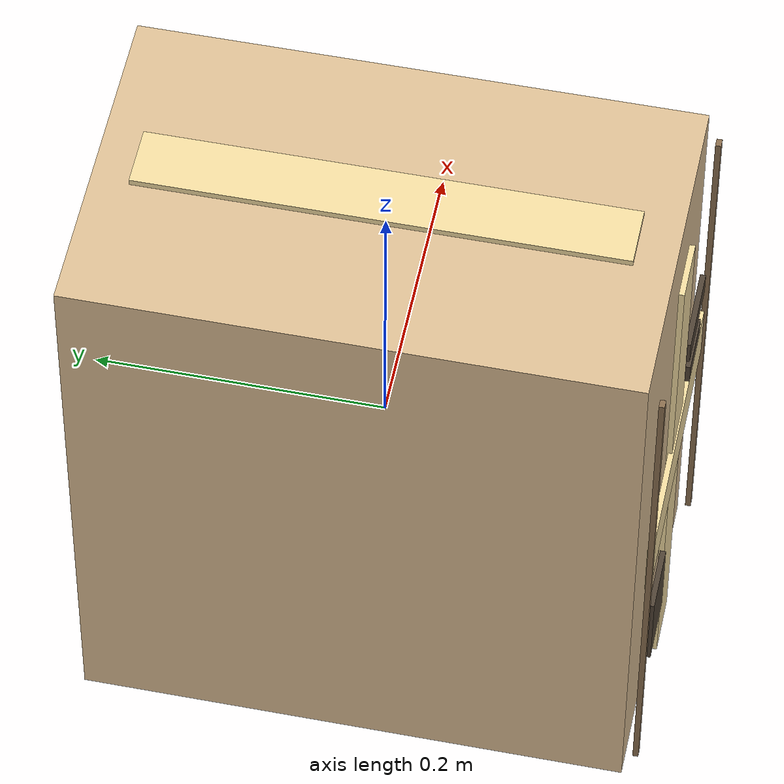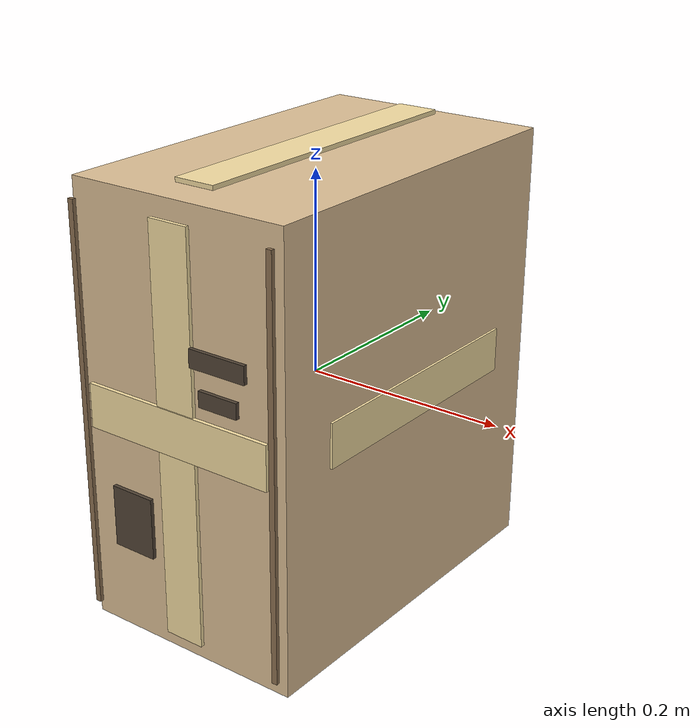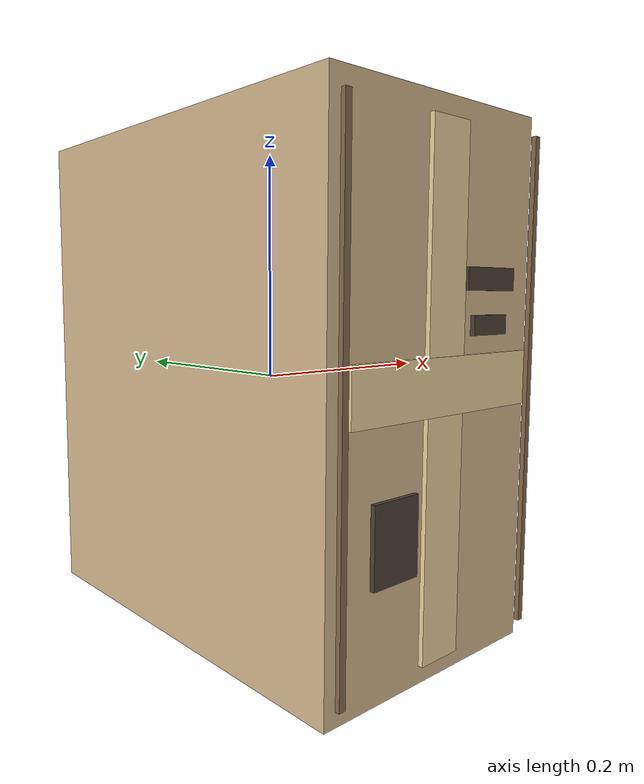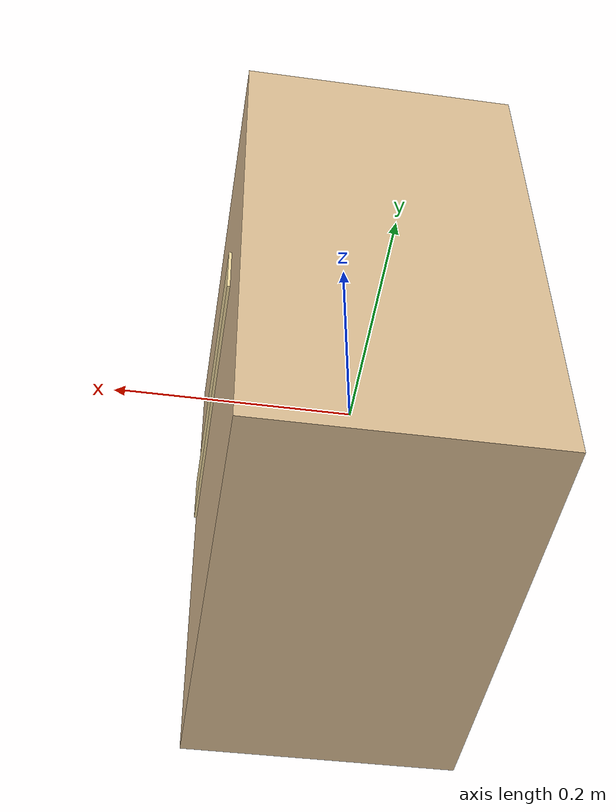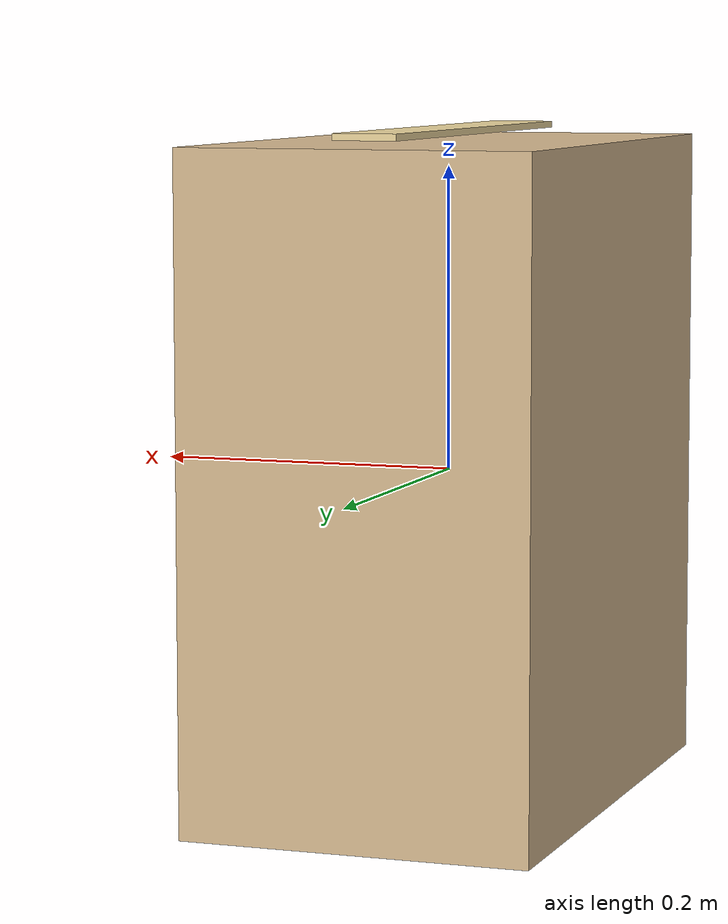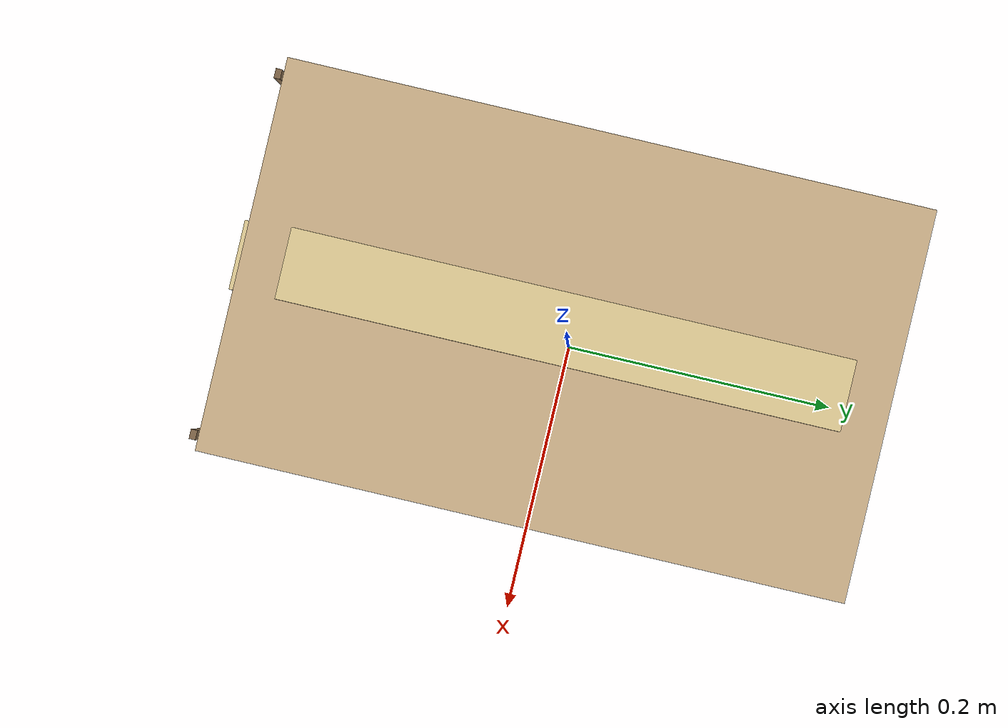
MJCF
<mujoco model="carry box">
  <worldbody>
    <body name="box">
      <freejoint name="free_joint" />
      <geom name="collision" type="box" size="0.115 0.19 0.217" mass="0.1" friction="0.8 0.05 0.005" condim="4" solref="0.005 2" rgba="0.865 0.748 0.584 1" />
      <geom name="front_tape_v" type="box" pos="0.0 -0.1957 0.0" size="0.0207 0.0019 0.19964" material="tape" contype="0" conaffinity="0" density="0" group="2" />
      <geom name="front_tape_h" type="box" pos="0.0 -0.19684000000000001 0.00868" size="0.1012 0.0019 0.0217" material="tape" contype="0" conaffinity="0" density="0" group="2" />
      <geom name="front_barcode" type="box" pos="-0.0552 -0.19798000000000002 -0.09548" size="0.023000000000000003 0.0019 0.030380000000000004" material="ink" contype="0" conaffinity="0" density="0" group="2" />
      <geom name="front_label_1" type="box" pos="0.0506 -0.19798000000000002 0.0868" size="0.029900000000000003 0.0019 0.00868" material="ink" contype="0" conaffinity="0" density="0" group="2" />
      <geom name="front_label_2" type="box" pos="0.0506 -0.19798000000000002 0.052079999999999994" size="0.0207 0.0019 0.007595000000000001" material="ink" contype="0" conaffinity="0" density="0" group="2" />
      <geom name="front_edge_l" type="box" pos="-0.1081 -0.19836 0.0" size="0.0028750000000000004 0.0019 0.19964" material="edge" contype="0" conaffinity="0" density="0" group="2" />
      <geom name="front_edge_r" type="box" pos="0.1081 -0.19836 0.0" size="0.0028750000000000004 0.0019 0.19964" material="edge" contype="0" conaffinity="0" density="0" group="2" />
      <geom name="top_tape" type="box" pos="0.0 0.0 0.22351000000000001" size="0.0207 0.1634 0.00217" material="tape" contype="0" conaffinity="0" density="0" group="2" />
      <geom name="right_tape" type="box" pos="0.11845000000000001 0.0 0.00868" size="0.00115 0.13299999999999998 0.0217" material="tape" contype="0" conaffinity="0" density="0" group="2" />
    </body>
  </worldbody>
  <asset>
    <material name="tape" rgba="0.9546871718858662 0.8650420277517009 0.6342527406021728 1" specular="0.12" shininess="0.02" />
    <material name="ink" rgba="0.31330415714736104 0.26006748065395024 0.20598415724984537 1" specular="0.12" shininess="0.02" />
    <material name="edge" rgba="0.5468542818359313 0.43662706741680085 0.31330415714736104 1" specular="0.12" shininess="0.02" />
  </asset>
</mujoco>
